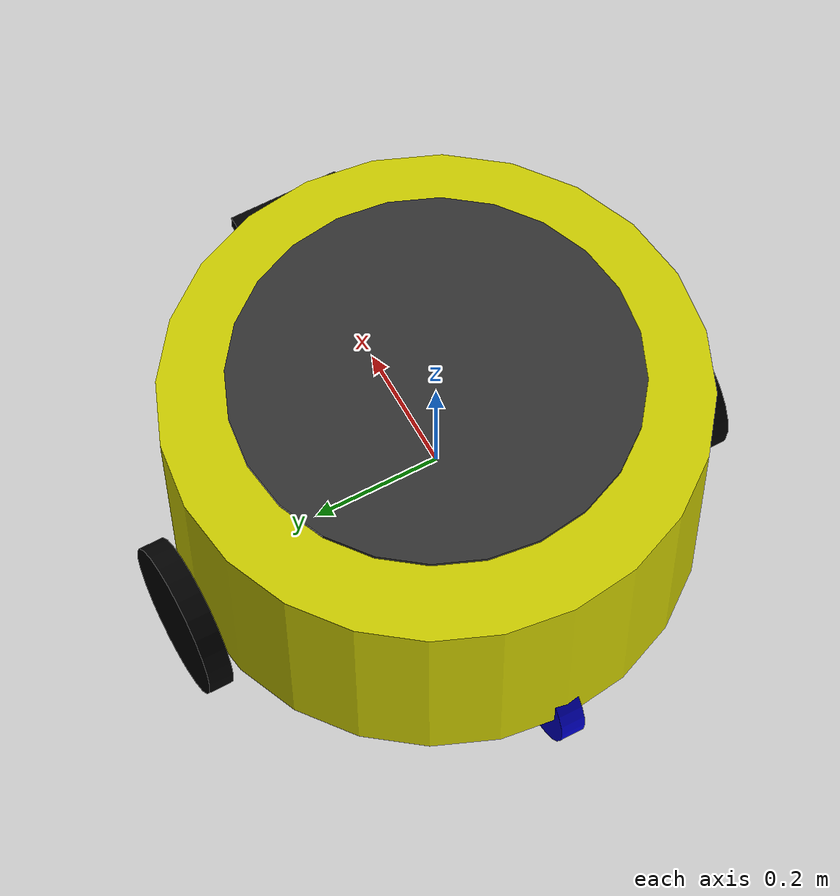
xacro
<?xml version="1.0"?>
<robot name="tobot" xmlns:xacro="http://www.ros.org/wiki/xacro">

  <!-- Constant for the xacro model -->

  <xacro:property name="GROUND_CLEARANCE" value="0.0335" />
  <xacro:property name="width" value="0.40" />
  <xacro:property name="xpsvwhloffset" value="0.3374" />
  <xacro:property name="yactwhloffset" value="0.4238" />
  <xacro:property name="bodylen" value="0.355" />
  <xacro:property name="wheel_w" value="0.039" />
  <xacro:property name="wheel_rad" value="0.1194" />
  <xacro:property name="plat_rad" value="0.3" />
  <xacro:property name="plat_len" value="0.005" />
  <xacro:property name="HIGH_PLATFORM" value="0.15" />
  <xacro:property name="posz_laser" value="0.285" />
  <xacro:property name="posz_camera" value="0.5" />
  <xacro:property name="fwheel_rad" value="0.08276" />
  <xacro:property name="PI" value="3.1415" />

  <!--Mass values for each link in kg-->
  <xacro:property name="base_mass" value="30" />
  <xacro:property name="plat_mass" value="2" />
  <xacro:property name="actvwheel_mass" value="10" />
  <xacro:property name="psvwheel_mass" value="1" />

  <!-- Import Rviz colors -->
  <xacro:include filename="$(find simulation_tobot)/URDF/materials.xacro" />

  <!-- Import all Gazebo-customization elements, including Gazebo colors -->
  <xacro:include filename="$(find simulation_tobot)/URDF/beebot.gazebo" />

  <!--Base_link-->
  <link name="base_link">
    <visual>
      <geometry>
         <cylinder length="${bodylen}" radius="${width}"/>
      </geometry>
      <origin rpy="0 0 0" xyz="0 0 ${GROUND_CLEARANCE}"/>
      <material name="yellow"/>
    </visual>

    <collision>
      <geometry>
         <cylinder length="${bodylen}" radius="${width}"/>
      </geometry>
      <origin rpy="0 0 0" xyz="0 0 ${bodylen/2}"/>
    </collision>

    <!--Actually, I will calculate it as a thick wall cylinder-->
    <!--with inner radius=0.1 and outer radius= width -->
    <inertial>
        <mass value="${base_mass}" />
        <origin rpy="0 0 0" xyz="0 0 ${GROUND_CLEARANCE}" />
        <inertia
          ixx="${(1/12) * base_mass * ( 3 * (0.1 * 0.1 + width * width) + bodylen)}" ixy="0.0" ixz="0.0"
          iyy="${(1/12) * base_mass * ( 3 * (0.1 * 0.1 + width * width) + bodylen)}" iyz="0.0"
          izz="${0.5 * base_mass * ( 0.1 * 0.1 + width * width)}" />
    </inertial>
  </link>

  <!--Left Wheel-->
  <link name="lwheel">
    <visual>
      <geometry>
        <cylinder length="${wheel_w}" radius="${wheel_rad}"/>
      </geometry>
      <origin rpy="-1.57075 0 0" xyz="0 0 0"/>
      <material name="black"/>
    </visual>

    <collision>
      <geometry>
        <cylinder length="${wheel_w}" radius="${wheel_rad}"/>
      </geometry>
      <origin rpy="-1.57075 0 0" xyz="0 0 0"/>
    </collision>

    <inertial>
        <mass value="0.010" />
        <origin rpy="-1.57075 0 0" xyz="0 0 0" />
        <inertia
          ixx="${(1/12) * actvwheel_mass * (3 * wheel_rad * wheel_rad + wheel_w * wheel_w)}" ixy="0.0" ixz="0.0"
          iyy="${(1/12) * actvwheel_mass * (3 * wheel_rad * wheel_rad + wheel_w * wheel_w)}" iyz="0.0"
          izz="${0.5 * actvwheel_mass * wheel_rad * wheel_rad }" />
    </inertial>
  </link>

  <joint name="base_to_lwheel" type="continuous">
    <parent link="base_link"/>
    <child link="lwheel"/>
    <axis xyz="0 1 0"/>
    <origin xyz="0 ${yactwhloffset} ${ -(bodylen / 2) + GROUND_CLEARANCE + 0.031 }" rpy="0 0 0"/>
  </joint>

  <!--Right wheel-->
  <link name="rwheel">
    <visual>
      <geometry>
        <cylinder length="${wheel_w}" radius="${wheel_rad}"/>
      </geometry>
      <origin rpy="-1.57075 0 0" xyz="0 0 0"/>
      <material name="black"/>
    </visual>

    <collision>
      <geometry>
        <cylinder length="${wheel_w}" radius="${wheel_rad}"/>
      </geometry>
      <origin rpy="-1.57075 0 0" xyz="0 0 0"/>
    </collision>

    <inertial>
        <mass value="0.010" />
        <origin rpy="-1.57075 0 0" xyz="0 0 0" />
        <inertia
          ixx="${(1/12) * actvwheel_mass * (3 * wheel_rad * wheel_rad + wheel_w * wheel_w)}" ixy="0.0" ixz="0.0"
          iyy="${(1/12) * actvwheel_mass * (3 * wheel_rad * wheel_rad + wheel_w * wheel_w)}" iyz="0.0"
          izz="${0.5 * actvwheel_mass * wheel_rad * wheel_rad }" />
    </inertial>
  </link>

  <joint name="base_to_rwheel" type="continuous">
    <parent link="base_link"/>
    <child link="rwheel"/>
    <axis xyz="0 1 0"/>
    <origin xyz="0 ${-yactwhloffset} ${ -(bodylen / 2) + GROUND_CLEARANCE + 0.031 }" rpy="0 0 0"/>
  </joint>

  <!--LASER-->
  <link name="laser">
    <visual>
      <geometry>
        <box size="0.06 0.06 0.087"/>
      </geometry>
      <origin rpy="0 0 0" xyz="0 0 0"/>
      <material name="orange"/>
    </visual>

    <inertial>
        <mass value="0.270" />
        <origin xyz="0 0 0" />
        <inertia
          ixx="2.632e-4" ixy="0" ixz="0"
          iyy="2.632e-4" iyz="0"
          izz="1.62e-4" />
    </inertial>

    <collision>
        <origin xyz="0 0 -0.0115" rpy="0 0 0" />
        <geometry>
          <box size="0.058 0.058 0.087" />
        </geometry>
     </collision>
  </link>

  <joint name="base_laser" type="fixed">
    <parent link="base_link"/>
    <child link="laser"/>
    <origin xyz="${width + 0.07} 0 ${GROUND_CLEARANCE-bodylen+posz_laser} " rpy="0 0 0"/>
  </joint>

  <!--FRONT WHEEL-->
  <link name="fwheel">
    <visual>
      <geometry>
        <cylinder length="${wheel_w}" radius="${fwheel_rad}"/>
      </geometry>
      <origin rpy="-1.57075 0 0" xyz="0 0 0"/>
      <material name="blue"/>
    </visual>

    <collision>
      <geometry>
        <cylinder length="${wheel_w}" radius="${fwheel_rad}"/>
      </geometry>
      <origin rpy="-1.57075 0 0" xyz="0 0 0"/>
    </collision>

    <inertial>
        <mass value="0.010" />
        <origin rpy="-1.57075 0 0" xyz="0 0 0" />
        <inertia
          ixx="${(1/12) * psvwheel_mass * (3 * fwheel_rad * fwheel_rad + wheel_w * wheel_w)}" ixy="0.0" ixz="0.0"
          iyy="${(1/12) * psvwheel_mass * (3 * fwheel_rad * fwheel_rad + wheel_w * wheel_w)}" iyz="0.0"
          izz="${0.5 * psvwheel_mass * fwheel_rad * fwheel_rad }" />
    </inertial>
  </link>

  <joint name="base_to_fwheel" type="continuous">
    <parent link="base_link"/>
    <child link="fwheel"/>
    <axis xyz="0 1 0"/>
    <origin xyz="${xpsvwhloffset} 0 ${ -(bodylen/2) + 0.02}" rpy="0 0 0"/>
  </joint>

  <!--BACK WHEEL-->
  <link name="bwheel">
    <visual>
      <geometry>
        <cylinder length="${wheel_w}" radius="${fwheel_rad}"/>
      </geometry>
      <origin rpy="-1.57075 0 0" xyz="0 0 0"/>
      <material name="blue"/>
    </visual>

    <collision>
      <geometry>
        <cylinder length="${wheel_w}" radius="${fwheel_rad}"/>
      </geometry>
      <origin rpy="-1.57075 0 0" xyz="0 0 0"/>
    </collision>

    <inertial>
        <mass value="0.010" />
        <origin rpy="-1.57075 0 0" xyz="0 0 0" />
        <inertia
          ixx="${(1/12) * psvwheel_mass * (3 * fwheel_rad * fwheel_rad + wheel_w * wheel_w)}" ixy="0.0" ixz="0.0"
          iyy="${(1/12) * psvwheel_mass * (3 * fwheel_rad * fwheel_rad + wheel_w * wheel_w)}" iyz="0.0"
          izz="${0.5 * psvwheel_mass * fwheel_rad * fwheel_rad }" />
    </inertial>
  </link>

  <joint name="base_to_bwheel" type="continuous">
    <parent link="base_link"/>
    <child link="bwheel"/>
    <axis xyz="0 1 0"/>
    <origin xyz="${-xpsvwhloffset} 0 ${ -(bodylen/2) + 0.02}" rpy="0 0 0"/>
  </joint>

  <!-- PLatform qui se leve-->
  <link name="platform">
    <visual>
      <geometry>
         <cylinder length="${plat_len}" radius="${plat_rad}"/>
      </geometry>
      <origin rpy="0 0 0" xyz="0 0 ${plat_len/2}"/>
      <material name="grey"/>
    </visual>

     <collision>
      <geometry>
         <cylinder length="${plat_len}" radius="${plat_rad}"/>
      </geometry>
      <origin rpy="0 0 0" xyz="0 0 ${plat_len/2}"/>
     </collision>

    <inertial>
        <mass value="0.001" />
        <origin xyz="${-width} 0 ${GROUND_CLEARANCE-(bodylen/2)-(fwheel_rad)}" rpy="0 0 0" />
        <inertia
          ixx="${(1/12) * plat_mass * (3 * plat_rad * plat_rad + 0.005 * 0.005)}" ixy="0.0" ixz="0.0"
          iyy="${(1/12) * plat_mass * (3 * plat_rad * plat_rad + 0.005 * 0.005)}" iyz="0.0"
          izz="${0.5 * plat_mass * plat_rad * plat_rad }" />
    </inertial>
  </link>

  <joint name="base_platform" type="prismatic">
    <parent link="base_link"/>
    <child link="platform"/>
    <axis xyz="0 0 1"/>
    <limit effort="1000.0" lower="0" upper="${HIGH_PLATFORM}" velocity="0.5"/>
    <origin rpy="0 0 0" xyz="0 0 ${(bodylen/2)+GROUND_CLEARANCE + 0.031}"/>
  </joint>

  <!--CAMERA-->
  <link name="camera_link">
    <visual>
      <geometry>
        <box size="0.035 0.178 0.024"/>
      </geometry>
      <origin rpy="0 0 0" xyz="0 0 0"/>
      <material name="black"/>
    </visual>

    <collision>
      <origin xyz="0 0 0" rpy="0 0 0" />
      <geometry>
          <box size="0.035 0.185 0.025"/>
      </geometry>
    </collision>

    <inertial>
        <mass value="0.200" />
        <origin xyz="0 0 0" />
        <inertia ixx="5.8083e-4" ixy="0" ixz="0"
                 iyy="3.0833e-5" iyz="0"
                 izz="5.9083e-4" />
   </inertial>
  </link>

  <joint name="camera" type="fixed">
    <parent link="base_link"/>
    <child link="camera_link"/>
    <origin xyz="${width + 0.07} 0 0.05 " rpy="0 0 0"/>
  </joint>

  <!--Transmissions for active wheels-->
    <!-- Transmission is important to link the joints and the controller -->
    <transmission name="base_to_lwheel_joint_trans">
      <type>transmission_interface/SimpleTransmission</type>
      <joint name="base_to_lwheel" />
      <actuator name="base_to_lwheel_joint_motor">
        <hardwareInterface>EffortJointInterface</hardwareInterface>
        <mechanicalReduction>1</mechanicalReduction>
      </actuator>
    </transmission>

    <transmission name="base_to_rwheel_joint_trans">
      <type>transmission_interface/SimpleTransmission</type>
      <joint name="base_to_rwheel" />
      <actuator name="base_to_rwheel_joint_motor">
        <hardwareInterface>EffortJointInterface</hardwareInterface>
        <mechanicalReduction>1</mechanicalReduction>
      </actuator>
    </transmission>
</robot>

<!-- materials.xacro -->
<robot>

  <material name="black">
    <color rgba="0.0 0.0 0.0 1.0"/>
  </material>

  <material name="blue">
    <color rgba="0.0 0.0 0.8 1.0"/>
  </material>

  <material name="green">
    <color rgba="0.0 0.8 0.0 1.0"/>
  </material>

  <material name="grey">
    <color rgba="0.2 0.2 0.2 1.0"/>
  </material>

  <material name="orange">
    <color rgba="${255/255} ${108/255} ${10/255} 1.0"/>
  </material>

  <material name="brown">
    <color rgba="${222/255} ${207/255} ${195/255} 1.0"/>
  </material>

  <material name="red">
    <color rgba="0.8 0.0 0.0 1.0"/>
  </material>

  <material name="white">
    <color rgba="1.0 1.0 1.0 1.0"/>
  </material>

  <material name="yellow">
    <color rgba="0.8 0.8 0.0 1.0"/>
  </material>
</robot>
